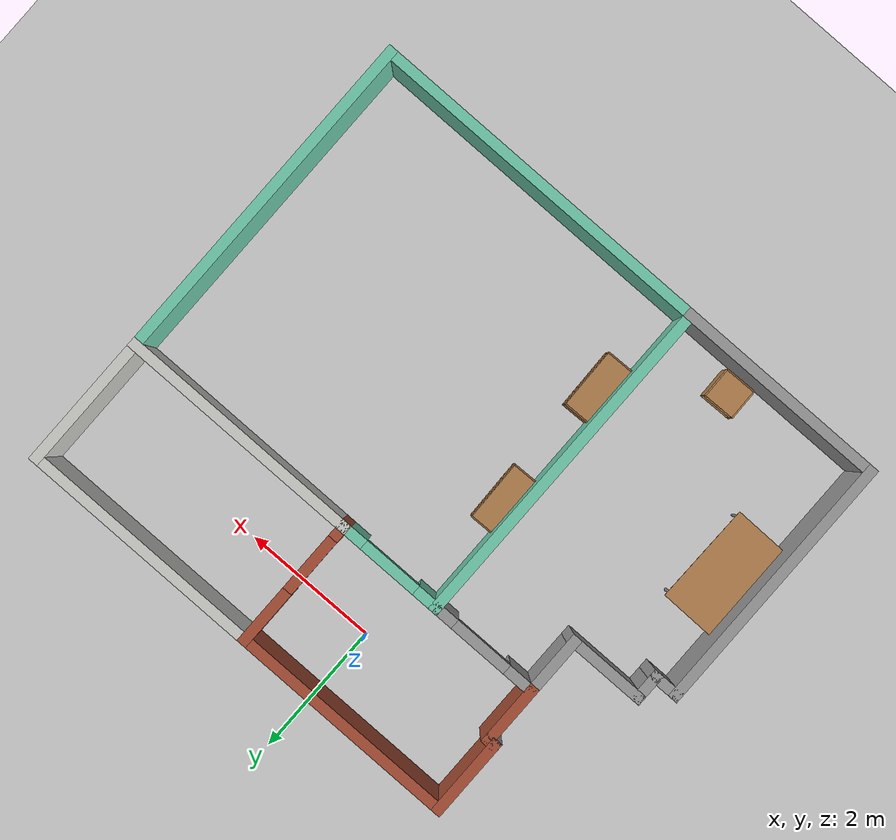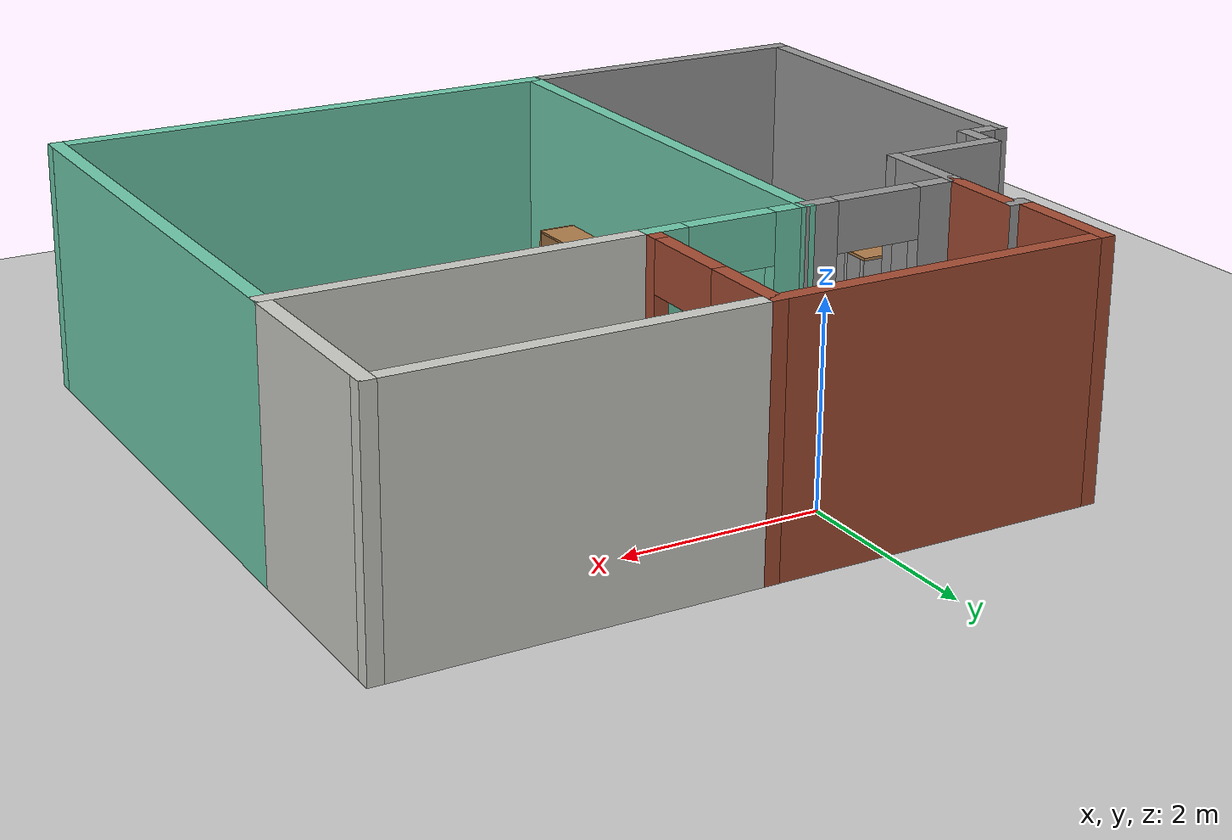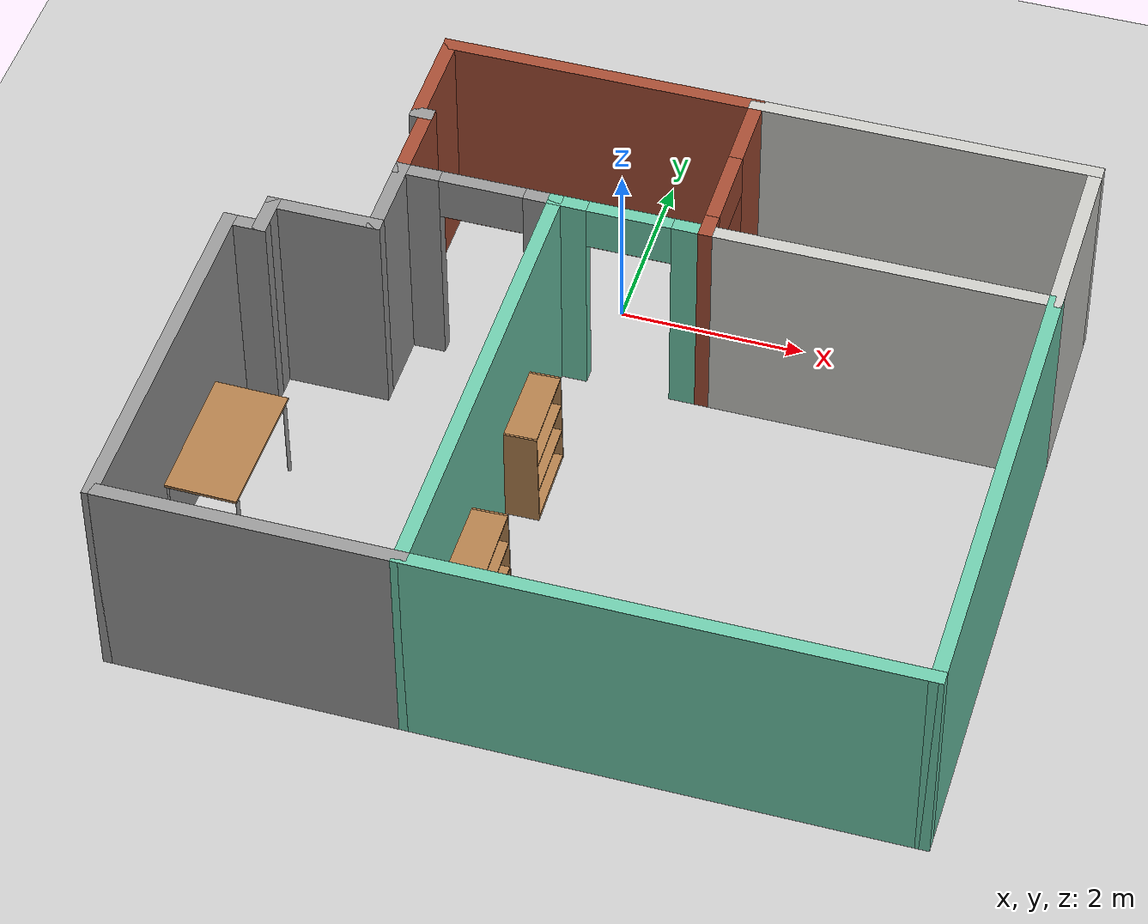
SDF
<sdf version="1.6">
 <world name="default">
  <model name="ground_plane">
   <static>1</static>
   <link name="link">
    <collision name="collision">
     <geometry><plane><normal>0 0 1</normal><size>100 100</size></plane></geometry>
     <surface><friction><ode><mu>100</mu><mu2>50</mu2></ode></friction></surface>
    </collision>
    <visual name="visual">
     <cast_shadows>0</cast_shadows>
     <geometry><plane><normal>0 0 1</normal><size>100 100</size></plane></geometry>
     <material>
      <script><uri>file://media/materials/scripts/gazebo.material</uri><name>Gazebo/Grey</name></script>
     </material>
    </visual>
   </link>
  </model>
  <model name="model">
   <pose>0.62405 -2.53382 0 0 -0 0</pose>
   <link name="Wall_24">
    <collision name="Wall_24_Collision">
     <geometry><box><size>1.25 0.15 2.5</size></box></geometry>
     <pose>0 0 1.25 0 -0 0</pose>
    </collision>
    <visual name="Wall_24_Visual">
     <pose>0 0 1.25 0 -0 0</pose>
     <geometry><box><size>1.25 0.15 2.5</size></box></geometry>
     <material>
      <script><uri>file://media/materials/scripts/gazebo.material</uri><name>Gazebo/Bricks</name></script>
      <ambient>1 1 1 1</ambient>
     </material>
     <meta><layer>0</layer></meta>
    </visual>
    <pose>-2.79996 2.95018 0 0 0 -1.5708</pose>
   </link>
   <link name="Wall_26">
    <collision name="Wall_26_Collision">
     <geometry><box><size>0.25 0.15 2.5</size></box></geometry>
     <pose>0 0 1.25 0 -0 0</pose>
    </collision>
    <visual name="Wall_26_Visual">
     <pose>0 0 1.25 0 -0 0</pose>
     <geometry><box><size>0.25 0.15 2.5</size></box></geometry>
     <material>
      <script><uri>file://media/materials/scripts/gazebo.material</uri><name>Gazebo/Grey</name></script>
      <ambient>1 1 1 1</ambient>
     </material>
     <meta><layer>0</layer></meta>
    </visual>
    <pose>-2.74996 2.40017 0 0 -0 0</pose>
   </link>
   <link name="Wall_27">
    <collision name="Wall_27_Collision">
     <geometry><box><size>1 0.15 2.5</size></box></geometry>
     <pose>0 0 1.25 0 -0 0</pose>
    </collision>
    <visual name="Wall_27_Visual">
     <pose>0 0 1.25 0 -0 0</pose>
     <geometry><box><size>1 0.15 2.5</size></box></geometry>
     <material>
      <script><uri>file://media/materials/scripts/gazebo.material</uri><name>Gazebo/Bricks</name></script>
      <ambient>1 1 1 1</ambient>
     </material>
     <meta><layer>0</layer></meta>
    </visual>
    <pose>-2.69996 1.97517 0 0 0 -1.5708</pose>
   </link>
   <link name="Wall_28">
    <pose>-1.89996 1.55018 0 0 -0 0</pose>
    <visual name="Wall_28_Visual_0">
     <pose>-0.625185 0 1.25 0 -0 0</pose>
     <geometry><box><size>0.49963 0.15 2.5</size></box></geometry>
     <material>
      <script><uri>file://media/materials/scripts/gazebo.material</uri><name>Gazebo/Grey</name></script>
      <ambient>1 1 1 1</ambient>
     </material>
     <meta><layer>0</layer></meta>
    </visual>
    <collision name="Wall_28_Collision_0">
     <geometry><box><size>0.49963 0.15 2.5</size></box></geometry>
     <pose>-0.625185 0 1.25 0 -0 0</pose>
    </collision>
    <visual name="Wall_28_Visual_1">
     <pose>0.699815 0 1.25 0 -0 0</pose>
     <geometry><box><size>0.35037 0.15 2.5</size></box></geometry>
     <material>
      <script><uri>file://media/materials/scripts/gazebo.material</uri><name>Gazebo/Grey</name></script>
      <ambient>1 1 1 1</ambient>
     </material>
     <meta><layer>0</layer></meta>
    </visual>
    <collision name="Wall_28_Collision_1">
     <geometry><box><size>0.35037 0.15 2.5</size></box></geometry>
     <pose>0.699815 0 1.25 0 -0 0</pose>
    </collision>
    <visual name="Wall_28_Visual_2">
     <pose>0.07463 0 2.25 0 -0 0</pose>
     <geometry><box><size>0.9 0.15 0.5</size></box></geometry>
     <material>
      <script><uri>file://media/materials/scripts/gazebo.material</uri><name>Gazebo/Grey</name></script>
      <ambient>1 1 1 1</ambient>
     </material>
     <meta><layer>0</layer></meta>
    </visual>
    <collision name="Wall_28_Collision_2">
     <geometry><box><size>0.9 0.15 0.5</size></box></geometry>
     <pose>0.07463 0 2.25 0 -0 0</pose>
    </collision>
   </link>
   <link name="Wall_30">
    <collision name="Wall_30_Collision">
     <geometry><box><size>1 0.15 2.5</size></box></geometry>
     <pose>0 0 1.25 0 -0 0</pose>
    </collision>
    <visual name="Wall_30_Visual">
     <pose>0 0 1.25 0 -0 0</pose>
     <geometry><box><size>1 0.15 2.5</size></box></geometry>
     <material>
      <script><uri>file://media/materials/scripts/gazebo.material</uri><name>Gazebo/Grey</name></script>
      <ambient>1 1 1 1</ambient>
     </material>
     <meta><layer>0</layer></meta>
    </visual>
    <pose>-2.69996 1.12518 0 0 0 -1.5708</pose>
   </link>
   <link name="Wall_32">
    <collision name="Wall_32_Collision">
     <geometry><box><size>1.25 0.15 2.5</size></box></geometry>
     <pose>0 0 1.25 0 -0 0</pose>
    </collision>
    <visual name="Wall_32_Visual">
     <pose>0 0 1.25 0 -0 0</pose>
     <geometry><box><size>1.25 0.15 2.5</size></box></geometry>
     <material>
      <script><uri>file://media/materials/scripts/gazebo.material</uri><name>Gazebo/Grey</name></script>
      <ambient>1 1 1 1</ambient>
     </material>
     <meta><layer>0</layer></meta>
    </visual>
    <pose>-3.24996 0.700175 0 0 -0 3.14159</pose>
   </link>
   <link name="Wall_33">
    <collision name="Wall_33_Collision">
     <geometry><box><size>0.5 0.15 2.5</size></box></geometry>
     <pose>0 0 1.25 0 -0 0</pose>
    </collision>
    <visual name="Wall_33_Visual">
     <pose>0 0 1.25 0 -0 0</pose>
     <geometry><box><size>0.5 0.15 2.5</size></box></geometry>
     <material>
      <script><uri>file://media/materials/scripts/gazebo.material</uri><name>Gazebo/Grey</name></script>
      <ambient>1 1 1 1</ambient>
     </material>
     <meta><layer>0</layer></meta>
    </visual>
    <pose>-3.79996 0.525175 0 0 0 -1.5708</pose>
   </link>
   <link name="Wall_34">
    <collision name="Wall_34_Collision">
     <geometry><box><size>0.5 0.15 2.5</size></box></geometry>
     <pose>0 0 1.25 0 -0 0</pose>
    </collision>
    <visual name="Wall_34_Visual">
     <pose>0 0 1.25 0 -0 0</pose>
     <geometry><box><size>0.5 0.15 2.5</size></box></geometry>
     <material>
      <script><uri>file://media/materials/scripts/gazebo.material</uri><name>Gazebo/Grey</name></script>
      <ambient>1 1 1 1</ambient>
     </material>
     <meta><layer>0</layer></meta>
    </visual>
    <pose>-3.97496 0.350175 0 0 -0 3.14159</pose>
   </link>
   <link name="Wall_35">
    <collision name="Wall_35_Collision">
     <geometry><box><size>4 0.15 2.5</size></box></geometry>
     <pose>0 0 1.25 0 -0 0</pose>
    </collision>
    <visual name="Wall_35_Visual">
     <pose>0 0 1.25 0 -0 0</pose>
     <geometry><box><size>4 0.15 2.5</size></box></geometry>
     <material>
      <script><uri>file://media/materials/scripts/gazebo.material</uri><name>Gazebo/Grey</name></script>
      <ambient>1 1 1 1</ambient>
     </material>
     <meta><layer>0</layer></meta>
    </visual>
    <pose>-4.14996 -1.57482 0 0 0 -1.5708</pose>
   </link>
   <link name="Wall_36">
    <collision name="Wall_36_Collision">
     <geometry><box><size>3.25 0.15 2.5</size></box></geometry>
     <pose>0 0 1.25 0 -0 0</pose>
    </collision>
    <visual name="Wall_36_Visual">
     <pose>0 0 1.25 0 -0 0</pose>
     <geometry><box><size>3.25 0.15 2.5</size></box></geometry>
     <material>
      <script><uri>file://media/materials/scripts/gazebo.material</uri><name>Gazebo/Grey</name></script>
      <ambient>1 1 1 1</ambient>
     </material>
     <meta><layer>0</layer></meta>
    </visual>
    <pose>-2.59996 -3.49982 0 0 -0 0</pose>
   </link>
   <link name="Wall_37">
    <collision name="Wall_37_Collision">
     <geometry><box><size>5.2 0.15 2.5</size></box></geometry>
     <pose>0 0 1.25 0 -0 0</pose>
    </collision>
    <visual name="Wall_37_Visual">
     <pose>0 0 1.25 0 -0 0</pose>
     <geometry><box><size>5.2 0.15 2.5</size></box></geometry>
     <material>
      <script><uri>file://media/materials/scripts/gazebo.material</uri><name>Gazebo/Grey</name></script>
      <ambient>0.435294 0.796078 0.67451 1</ambient>
     </material>
     <meta><layer>0</layer></meta>
    </visual>
    <pose>-1.04996 -0.974825 0 0 -0 1.5708</pose>
   </link>
   <link name="Wall_39">
    <pose>0.549953 2.52482 0 0 -0 1.5708</pose>
    <visual name="Wall_39_Visual_0">
     <pose>-0.906032 0 1.25 0 -0 0</pose>
     <geometry><box><size>0.288289 0.15 2.5</size></box></geometry>
     <material>
      <script><uri>file://media/materials/scripts/gazebo.material</uri><name>Gazebo/Bricks</name></script>
      <ambient>1 1 1 1</ambient>
     </material>
     <meta><layer>0</layer></meta>
    </visual>
    <collision name="Wall_39_Collision_0">
     <geometry><box><size>0.288289 0.15 2.5</size></box></geometry>
     <pose>-0.906032 0 1.25 0 -0 0</pose>
    </collision>
    <visual name="Wall_39_Visual_1">
     <pose>0.594145 0 1.25 0 -0 0</pose>
     <geometry><box><size>0.912064 0.15 2.5</size></box></geometry>
     <material>
      <script><uri>file://media/materials/scripts/gazebo.material</uri><name>Gazebo/Bricks</name></script>
      <ambient>1 1 1 1</ambient>
     </material>
     <meta><layer>0</layer></meta>
    </visual>
    <collision name="Wall_39_Collision_1">
     <geometry><box><size>0.912064 0.15 2.5</size></box></geometry>
     <pose>0.594145 0 1.25 0 -0 0</pose>
    </collision>
    <visual name="Wall_39_Visual_2">
     <pose>-0.311887 0 2.25 0 -0 0</pose>
     <geometry><box><size>0.9 0.15 0.5</size></box></geometry>
     <material>
      <script><uri>file://media/materials/scripts/gazebo.material</uri><name>Gazebo/Bricks</name></script>
      <ambient>1 1 1 1</ambient>
     </material>
     <meta><layer>0</layer></meta>
    </visual>
    <collision name="Wall_39_Collision_2">
     <geometry><box><size>0.9 0.15 0.5</size></box></geometry>
     <pose>-0.311887 0 2.25 0 -0 0</pose>
    </collision>
   </link>
   <link name="Wall_41">
    <collision name="Wall_41_Collision">
     <geometry><box><size>3.5 0.15 2.5</size></box></geometry>
     <pose>0 0 1.25 0 -0 0</pose>
    </collision>
    <visual name="Wall_41_Visual">
     <pose>0 0 1.25 0 -0 0</pose>
     <geometry><box><size>3.5 0.15 2.5</size></box></geometry>
     <material>
      <script><uri>file://media/materials/scripts/gazebo.material</uri><name>Gazebo/Bricks</name></script>
      <ambient>1 1 1 1</ambient>
     </material>
     <meta><layer>0</layer></meta>
    </visual>
    <pose>-1.125 3.5 0 0 -0 3.14149</pose>
   </link>
   <link name="Wall_44">
    <pose>-0.250002 1.55 0 0 0 -0.000221</pose>
    <visual name="Wall_44_Visual_0">
     <pose>-0.664415 0 1.25 0 -0 0</pose>
     <geometry><box><size>0.42108 0.15 2.5</size></box></geometry>
     <material>
      <script><uri>file://media/materials/scripts/gazebo.material</uri><name>Gazebo/Grey</name></script>
      <ambient>0.435294 0.796078 0.67451 1</ambient>
     </material>
     <meta><layer>0</layer></meta>
    </visual>
    <collision name="Wall_44_Collision_0">
     <geometry><box><size>0.42108 0.15 2.5</size></box></geometry>
     <pose>-0.664415 0 1.25 0 -0 0</pose>
    </collision>
    <visual name="Wall_44_Visual_1">
     <pose>0.66054 0 1.25 0 -0 0</pose>
     <geometry><box><size>0.42883 0.15 2.5</size></box></geometry>
     <material>
      <script><uri>file://media/materials/scripts/gazebo.material</uri><name>Gazebo/Grey</name></script>
      <ambient>0.435294 0.796078 0.67451 1</ambient>
     </material>
     <meta><layer>0</layer></meta>
    </visual>
    <collision name="Wall_44_Collision_1">
     <geometry><box><size>0.42883 0.15 2.5</size></box></geometry>
     <pose>0.66054 0 1.25 0 -0 0</pose>
    </collision>
    <visual name="Wall_44_Visual_2">
     <pose>-0.003875 0 2.25 0 -0 0</pose>
     <geometry><box><size>0.9 0.15 0.5</size></box></geometry>
     <material>
      <script><uri>file://media/materials/scripts/gazebo.material</uri><name>Gazebo/Grey</name></script>
      <ambient>0.435294 0.796078 0.67451 1</ambient>
     </material>
     <meta><layer>0</layer></meta>
    </visual>
    <collision name="Wall_44_Collision_2">
     <geometry><box><size>0.9 0.15 0.5</size></box></geometry>
     <pose>-0.003875 0 2.25 0 -0 0</pose>
    </collision>
   </link>
   <link name="Wall_45">
    <collision name="Wall_45_Collision">
     <geometry><box><size>3.75 0.15 2.5</size></box></geometry>
     <pose>0 0 1.25 0 -0 0</pose>
    </collision>
    <visual name="Wall_45_Visual">
     <pose>0 0 1.25 0 -0 0</pose>
     <geometry><box><size>3.75 0.15 2.5</size></box></geometry>
     <material>
      <script><uri>file://media/materials/scripts/gazebo.material</uri><name>Gazebo/CeilingTiled</name></script>
      <ambient>0.435294 0.796078 0.67451 1</ambient>
     </material>
     <meta><layer>0</layer></meta>
    </visual>
    <pose>2.34995 1.54982 0 0 -0 0</pose>
   </link>
   <link name="Wall_46">
    <collision name="Wall_46_Collision">
     <geometry><box><size>2.1 0.15 2.5</size></box></geometry>
     <pose>0 0 1.25 0 -0 0</pose>
    </collision>
    <visual name="Wall_46_Visual">
     <pose>0 0 1.25 0 -0 0</pose>
     <geometry><box><size>2.1 0.15 2.5</size></box></geometry>
     <material>
      <script><uri>file://media/materials/scripts/gazebo.material</uri><name>Gazebo/CeilingTiled</name></script>
      <ambient>1 1 1 1</ambient>
     </material>
     <meta><layer>0</layer></meta>
    </visual>
    <pose>4.14995 2.52482 0 0 -0 1.5708</pose>
   </link>
   <link name="Wall_48">
    <collision name="Wall_48_Collision">
     <geometry><box><size>3.75 0.15 2.5</size></box></geometry>
     <pose>0 0 1.25 0 -0 0</pose>
    </collision>
    <visual name="Wall_48_Visual">
     <pose>0 0 1.25 0 -0 0</pose>
     <geometry><box><size>3.75 0.15 2.5</size></box></geometry>
     <material>
      <script><uri>file://media/materials/scripts/gazebo.material</uri><name>Gazebo/CeilingTiled</name></script>
      <ambient>1 1 1 1</ambient>
     </material>
     <meta><layer>0</layer></meta>
    </visual>
    <pose>2.34995 3.49982 0 0 -0 0</pose>
   </link>
   <link name="Wall_50">
    <collision name="Wall_50_Collision">
     <geometry><box><size>5.2 0.15 2.5</size></box></geometry>
     <pose>0 0 1.25 0 -0 0</pose>
    </collision>
    <visual name="Wall_50_Visual">
     <pose>0 0 1.25 0 -0 0</pose>
     <geometry><box><size>5.2 0.15 2.5</size></box></geometry>
     <material>
      <script><uri>file://media/materials/scripts/gazebo.material</uri><name>Gazebo/Grey</name></script>
      <ambient>0.435294 0.796078 0.67451 1</ambient>
     </material>
     <meta><layer>0</layer></meta>
    </visual>
    <pose>4.14995 -0.975178 0 0 0 -1.5708</pose>
   </link>
   <link name="Wall_52">
    <collision name="Wall_52_Collision">
     <geometry><box><size>5.34991 0.15 2.5</size></box></geometry>
     <pose>0 0 1.25 0 -0 0</pose>
    </collision>
    <visual name="Wall_52_Visual">
     <pose>0 0 1.25 0 -0 0</pose>
     <geometry><box><size>5.34991 0.15 2.5</size></box></geometry>
     <material>
      <script><uri>file://media/materials/scripts/gazebo.material</uri><name>Gazebo/Grey</name></script>
      <ambient>0.435294 0.796078 0.67451 1</ambient>
     </material>
     <meta><layer>0</layer></meta>
    </visual>
    <pose>1.55 -3.5 0 0 0 -6.8e-05</pose>
   </link>
   <static>1</static>
  </model>
  <model name="bookshelf">
   <static>1</static>
   <link name="link">
    <inertial><mass>1</mass></inertial>
    <collision name="back">
     <pose>0 0.005 0.6 0 -0 0</pose>
     <geometry><box><size>0.9 0.01 1.2</size></box></geometry>
    </collision>
    <visual name="visual1">
     <pose>0 0.005 0.6 0 -0 0</pose>
     <geometry><box><size>0.9 0.01 1.2</size></box></geometry>
     <material>
      <script><uri>file://media/materials/scripts/gazebo.material</uri><name>Gazebo/Wood</name></script>
     </material>
    </visual>
    <collision name="left_side">
     <pose>0.45 -0.195 0.6 0 -0 0</pose>
     <geometry><box><size>0.02 0.4 1.2</size></box></geometry>
    </collision>
    <visual name="visual2">
     <pose>0.45 -0.195 0.6 0 -0 0</pose>
     <geometry><box><size>0.02 0.4 1.2</size></box></geometry>
     <material>
      <script><uri>file://media/materials/scripts/gazebo.material</uri><name>Gazebo/Wood</name></script>
     </material>
    </visual>
    <collision name="right_side">
     <pose>-0.45 -0.195 0.6 0 -0 0</pose>
     <geometry><box><size>0.02 0.4 1.2</size></box></geometry>
    </collision>
    <visual name="visual3">
     <pose>-0.45 -0.195 0.6 0 -0 0</pose>
     <geometry><box><size>0.02 0.4 1.2</size></box></geometry>
     <material>
      <script><uri>file://media/materials/scripts/gazebo.material</uri><name>Gazebo/Wood</name></script>
     </material>
    </visual>
    <collision name="bottom">
     <pose>0 -0.195 0.03 0 -0 0</pose>
     <geometry><box><size>0.88 0.4 0.06</size></box></geometry>
    </collision>
    <visual name="visual4">
     <pose>0 -0.195 0.03 0 -0 0</pose>
     <geometry><box><size>0.88 0.4 0.06</size></box></geometry>
     <material>
      <script><uri>file://media/materials/scripts/gazebo.material</uri><name>Gazebo/Wood</name></script>
     </material>
    </visual>
    <collision name="top">
     <pose>0 -0.195 1.19 0 -0 0</pose>
     <geometry><box><size>0.88 0.4 0.02</size></box></geometry>
    </collision>
    <visual name="visual5">
     <pose>0 -0.195 1.19 0 -0 0</pose>
     <geometry><box><size>0.88 0.4 0.02</size></box></geometry>
     <material>
      <script><uri>file://media/materials/scripts/gazebo.material</uri><name>Gazebo/Wood</name></script>
     </material>
    </visual>
    <collision name="low_shelf">
     <pose>0 -0.195 0.43 0 -0 0</pose>
     <geometry><box><size>0.88 0.4 0.02</size></box></geometry>
    </collision>
    <visual name="visual6">
     <pose>0 -0.195 0.43 0 -0 0</pose>
     <geometry><box><size>0.88 0.4 0.02</size></box></geometry>
     <material>
      <script><uri>file://media/materials/scripts/gazebo.material</uri><name>Gazebo/Wood</name></script>
     </material>
    </visual>
    <collision name="high_shelf">
     <pose>0 -0.195 0.8 0 -0 0</pose>
     <geometry><box><size>0.88 0.4 0.02</size></box></geometry>
    </collision>
    <visual name="visual7">
     <pose>0 -0.195 0.8 0 -0 0</pose>
     <geometry><box><size>0.88 0.4 0.02</size></box></geometry>
     <material>
      <script><uri>file://media/materials/scripts/gazebo.material</uri><name>Gazebo/Wood</name></script>
     </material>
    </visual>
   </link>
   <pose>-0.347308 -4.57508 -0.023969 -0.012585 0.000268 1.59207</pose>
  </model>
  <model name="cabinet">
   <static>1</static>
   <link name="cabinet_bottom_plate">
    <inertial>
     <pose>0 0 -1 0 -0 0</pose>
     <inertia><ixx>2.05</ixx><ixy>0</ixy><ixz>0</ixz><iyy>2.05</iyy><iyz>0</iyz><izz>2.05</izz></inertia>
     <mass>25</mass>
    </inertial>
    <collision name="cabinet_bottom_plate_geom">
     <pose>0 0 0.01 0 -0 0</pose>
     <geometry><box><size>0.45 0.45 0.02</size></box></geometry>
    </collision>
    <visual name="cabinet_bottom_plate_geom_visual">
     <pose>0 0 0.01 0 -0 0</pose>
     <geometry><box><size>0.45 0.45 0.02</size></box></geometry>
     <material>
      <script><uri>file://media/materials/scripts/gazebo.material</uri><name>Gazebo/Wood</name></script>
     </material>
    </visual>
    <collision name="cabinet_bottom_plate_geom_cabinet_back_plate">
     <pose>0.235 0 0.51 0 -0 0</pose>
     <geometry><box><size>0.02 0.45 1.02</size></box></geometry>
    </collision>
    <visual name="cabinet_bottom_plate_geom_cabinet_back_plate_visual">
     <pose>0.235 0 0.51 0 -0 0</pose>
     <geometry><box><size>0.02 0.45 1.02</size></box></geometry>
     <material>
      <script><uri>file://media/materials/scripts/gazebo.material</uri><name>Gazebo/Wood</name></script>
     </material>
    </visual>
    <collision name="cabinet_bottom_plate_geom_cabinet_left_plate">
     <pose>0 0.235 0.51 0 -0 0</pose>
     <geometry><box><size>0.45 0.02 1.02</size></box></geometry>
    </collision>
    <visual name="cabinet_bottom_plate_geom_cabinet_left_plate_visual">
     <pose>0 0.235 0.51 0 -0 0</pose>
     <geometry><box><size>0.45 0.02 1.02</size></box></geometry>
     <material>
      <script><uri>file://media/materials/scripts/gazebo.material</uri><name>Gazebo/Wood</name></script>
     </material>
    </visual>
    <collision name="cabinet_bottom_plate_geom_cabinet_middle_plate">
     <pose>0 0 0.51 0 -0 0</pose>
     <geometry><box><size>0.45 0.45 0.02</size></box></geometry>
    </collision>
    <visual name="cabinet_bottom_plate_geom_cabinet_middle_plate_visual">
     <pose>0 0 0.51 0 -0 0</pose>
     <geometry><box><size>0.45 0.45 0.02</size></box></geometry>
     <material>
      <script><uri>file://media/materials/scripts/gazebo.material</uri><name>Gazebo/Wood</name></script>
     </material>
    </visual>
    <collision name="cabinet_bottom_plate_geom_cabinet_right_plate">
     <pose>0 -0.235 0.51 0 -0 0</pose>
     <geometry><box><size>0.45 0.02 1.02</size></box></geometry>
    </collision>
    <visual name="cabinet_bottom_plate_geom_cabinet_right_plate_visual">
     <pose>0 -0.235 0.51 0 -0 0</pose>
     <geometry><box><size>0.45 0.02 1.02</size></box></geometry>
     <material>
      <script><uri>file://media/materials/scripts/gazebo.material</uri><name>Gazebo/Wood</name></script>
     </material>
    </visual>
    <collision name="cabinet_bottom_plate_geom_cabinet_top_plate">
     <pose>0 0 1.01 0 -0 0</pose>
     <geometry><box><size>0.45 0.45 0.02</size></box></geometry>
    </collision>
    <visual name="cabinet_bottom_plate_geom_cabinet_top_plate_visual">
     <pose>0 0 1.01 0 -0 0</pose>
     <geometry><box><size>0.45 0.45 0.02</size></box></geometry>
     <material>
      <script><uri>file://media/materials/scripts/gazebo.material</uri><name>Gazebo/Wood</name></script>
     </material>
    </visual>
   </link>
   <pose>-1.53915 -5.66501 0 0 0 -1.55195</pose>
  </model>
  <model name="table_0">
   <static>1</static>
   <link name="link">
    <collision name="surface">
     <pose>0 0 1 0 -0 0</pose>
     <geometry><box><size>1.5 0.8 0.03</size></box></geometry>
     <surface><friction><ode><mu>0.6</mu><mu2>0.6</mu2></ode></friction></surface>
    </collision>
    <visual name="visual1">
     <pose>0 0 1 0 -0 0</pose>
     <geometry><box><size>1.5 0.8 0.03</size></box></geometry>
     <material>
      <script><uri>file://media/materials/scripts/gazebo.material</uri><name>Gazebo/Wood</name></script>
     </material>
    </visual>
    <collision name="front_left_leg">
     <pose>0.68 0.38 0.5 0 -0 0</pose>
     <geometry><cylinder><radius>0.02</radius><length>1</length></cylinder></geometry>
    </collision>
    <visual name="front_left_leg">
     <pose>0.68 0.38 0.5 0 -0 0</pose>
     <geometry><cylinder><radius>0.02</radius><length>1</length></cylinder></geometry>
     <material>
      <script><uri>file://media/materials/scripts/gazebo.material</uri><name>Gazebo/Grey</name></script>
     </material>
    </visual>
    <collision name="front_right_leg">
     <pose>0.68 -0.38 0.5 0 -0 0</pose>
     <geometry><cylinder><radius>0.02</radius><length>1</length></cylinder></geometry>
    </collision>
    <visual name="front_right_leg">
     <pose>0.68 -0.38 0.5 0 -0 0</pose>
     <geometry><cylinder><radius>0.02</radius><length>1</length></cylinder></geometry>
     <material>
      <script><uri>file://media/materials/scripts/gazebo.material</uri><name>Gazebo/Grey</name></script>
     </material>
    </visual>
    <collision name="back_right_leg">
     <pose>-0.68 -0.38 0.5 0 -0 0</pose>
     <geometry><cylinder><radius>0.02</radius><length>1</length></cylinder></geometry>
    </collision>
    <visual name="back_right_leg">
     <pose>-0.68 -0.38 0.5 0 -0 0</pose>
     <geometry><cylinder><radius>0.02</radius><length>1</length></cylinder></geometry>
     <material>
      <script><uri>file://media/materials/scripts/gazebo.material</uri><name>Gazebo/Grey</name></script>
     </material>
    </visual>
    <collision name="back_left_leg">
     <pose>-0.68 0.38 0.5 0 -0 0</pose>
     <geometry><cylinder><radius>0.02</radius><length>1</length></cylinder></geometry>
    </collision>
    <visual name="back_left_leg">
     <pose>-0.68 0.38 0.5 0 -0 0</pose>
     <geometry><cylinder><radius>0.02</radius><length>1</length></cylinder></geometry>
     <material>
      <script><uri>file://media/materials/scripts/gazebo.material</uri><name>Gazebo/Grey</name></script>
     </material>
    </visual>
   </link>
   <pose>-3.06582 -3.81392 0 0 0 -1.58639</pose>
  </model>
  <model name="bookshelf_clone">
   <static>1</static>
   <link name="link">
    <inertial><mass>1</mass></inertial>
    <collision name="back">
     <pose>0 0.005 0.6 0 -0 0</pose>
     <geometry><box><size>0.9 0.01 1.2</size></box></geometry>
    </collision>
    <visual name="visual1">
     <pose>0 0.005 0.6 0 -0 0</pose>
     <geometry><box><size>0.9 0.01 1.2</size></box></geometry>
     <material>
      <script><uri>file://media/materials/scripts/gazebo.material</uri><name>Gazebo/Wood</name></script>
     </material>
    </visual>
    <collision name="left_side">
     <pose>0.45 -0.195 0.6 0 -0 0</pose>
     <geometry><box><size>0.02 0.4 1.2</size></box></geometry>
    </collision>
    <visual name="visual2">
     <pose>0.45 -0.195 0.6 0 -0 0</pose>
     <geometry><box><size>0.02 0.4 1.2</size></box></geometry>
     <material>
      <script><uri>file://media/materials/scripts/gazebo.material</uri><name>Gazebo/Wood</name></script>
     </material>
    </visual>
    <collision name="right_side">
     <pose>-0.45 -0.195 0.6 0 -0 0</pose>
     <geometry><box><size>0.02 0.4 1.2</size></box></geometry>
    </collision>
    <visual name="visual3">
     <pose>-0.45 -0.195 0.6 0 -0 0</pose>
     <geometry><box><size>0.02 0.4 1.2</size></box></geometry>
     <material>
      <script><uri>file://media/materials/scripts/gazebo.material</uri><name>Gazebo/Wood</name></script>
     </material>
    </visual>
    <collision name="bottom">
     <pose>0 -0.195 0.03 0 -0 0</pose>
     <geometry><box><size>0.88 0.4 0.06</size></box></geometry>
    </collision>
    <visual name="visual4">
     <pose>0 -0.195 0.03 0 -0 0</pose>
     <geometry><box><size>0.88 0.4 0.06</size></box></geometry>
     <material>
      <script><uri>file://media/materials/scripts/gazebo.material</uri><name>Gazebo/Wood</name></script>
     </material>
    </visual>
    <collision name="top">
     <pose>0 -0.195 1.19 0 -0 0</pose>
     <geometry><box><size>0.88 0.4 0.02</size></box></geometry>
    </collision>
    <visual name="visual5">
     <pose>0 -0.195 1.19 0 -0 0</pose>
     <geometry><box><size>0.88 0.4 0.02</size></box></geometry>
     <material>
      <script><uri>file://media/materials/scripts/gazebo.material</uri><name>Gazebo/Wood</name></script>
     </material>
    </visual>
    <collision name="low_shelf">
     <pose>0 -0.195 0.43 0 -0 0</pose>
     <geometry><box><size>0.88 0.4 0.02</size></box></geometry>
    </collision>
    <visual name="visual6">
     <pose>0 -0.195 0.43 0 -0 0</pose>
     <geometry><box><size>0.88 0.4 0.02</size></box></geometry>
     <material>
      <script><uri>file://media/materials/scripts/gazebo.material</uri><name>Gazebo/Wood</name></script>
     </material>
    </visual>
    <collision name="high_shelf">
     <pose>0 -0.195 0.8 0 -0 0</pose>
     <geometry><box><size>0.88 0.4 0.02</size></box></geometry>
    </collision>
    <visual name="visual7">
     <pose>0 -0.195 0.8 0 -0 0</pose>
     <geometry><box><size>0.88 0.4 0.02</size></box></geometry>
     <material>
      <script><uri>file://media/materials/scripts/gazebo.material</uri><name>Gazebo/Wood</name></script>
     </material>
    </visual>
   </link>
   <pose>-0.391281 -2.62649 -0.023969 -0.012585 0.000268 1.59207</pose>
  </model>
 </world>
</sdf>
